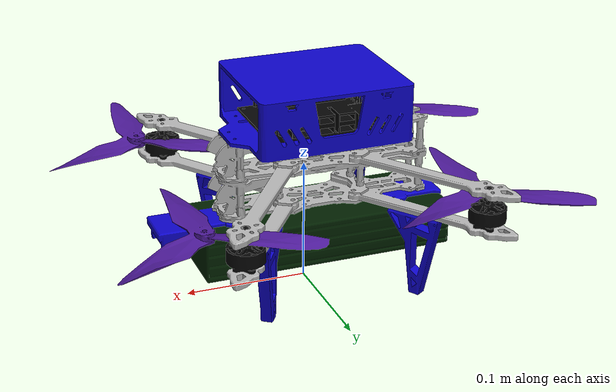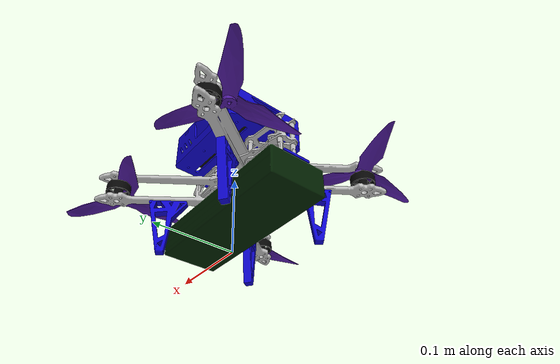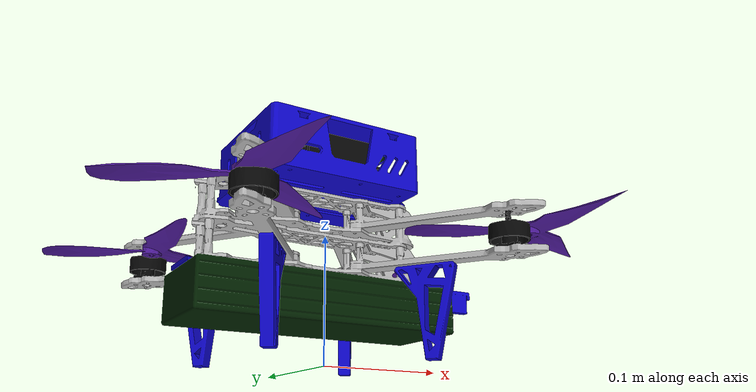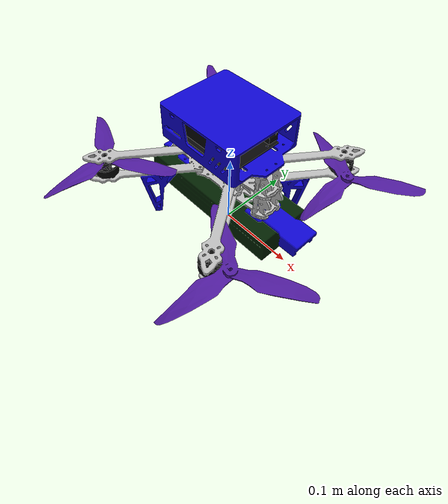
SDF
<?xml version="1.0" encoding="UTF-8"?>
<sdf version='1.9'>
  <model name='coisaruim_base'>
    <pose>0 0 0.09 0 0 0</pose>
    <self_collide>false</self_collide>
    <static>false</static>
    <link name="base_link">
      <inertial>
        <mass>2.35</mass>
        <inertia>
          <ixx>0.02166666666666667</ixx>
          <ixy>0</ixy>
          <ixz>0</ixz>
          <iyy>0.02166666666666667</iyy>
          <iyz>0</iyz>
          <izz>0.04000000000000001</izz>
        </inertia>
      </inertial>
      <gravity>true</gravity>
      <velocity_decay/>
      <visual name="base_link_visual">
        <pose>0 0 0.005 0 0 -1.5707</pose>
        <geometry>
          <mesh>
            <scale>1 1 1</scale>
            <uri>model://coisaruim_base/meshes/CoisaRuim.dae</uri>
          </mesh>
        </geometry>
      </visual>
      <collision name="base_link_collision">
        <pose>0 0 0.005 0 0 -1.5707</pose>
        <geometry>
          <mesh>
            <scale>1 1 1</scale>
            <uri>model://coisaruim_base/meshes/CoisaRuim_Collision.stl</uri>
          </mesh>
        </geometry>
        <surface>
          <contact>
            <ode>
              <min_depth>0.001</min_depth>
              <max_vel>0</max_vel>
            </ode>
          </contact>
          <friction>
            <ode/>
          </friction>
        </surface>
      </collision>
      <sensor name="air_pressure_sensor" type="air_pressure">
        <always_on>1</always_on>
        <update_rate>50</update_rate>
        <air_pressure>
          <pressure>
            <noise type="gaussian">
              <mean>0</mean>
              <stddev>0.01</stddev>
            </noise>
          </pressure>
        </air_pressure>
      </sensor>
      <sensor name="imu_sensor" type="imu">
        <always_on>1</always_on>
        <update_rate>250</update_rate>
        <imu>
          <angular_velocity>
            <x>
              <noise type="gaussian">
                <mean>0</mean>
                <stddev>0.00018665</stddev>
                <dynamic_bias_stddev>3.8785e-05</dynamic_bias_stddev>
                <dynamic_bias_correlation_time>1000</dynamic_bias_correlation_time>
              </noise>
            </x>
            <y>
              <noise type="gaussian">
                <mean>0</mean>
                <stddev>0.00018665</stddev>
                <dynamic_bias_stddev>3.8785e-05</dynamic_bias_stddev>
                <dynamic_bias_correlation_time>1000</dynamic_bias_correlation_time>
              </noise>
            </y>
            <z>
              <noise type="gaussian">
                <mean>0</mean>
                <stddev>0.00018665</stddev>
                <dynamic_bias_stddev>3.8785e-05</dynamic_bias_stddev>
                <dynamic_bias_correlation_time>1000</dynamic_bias_correlation_time>
              </noise>
            </z>
          </angular_velocity>
          <linear_acceleration>
            <x>
              <noise type="gaussian">
                <mean>0</mean>
                <stddev>0.00186</stddev>
                <dynamic_bias_stddev>0.006</dynamic_bias_stddev>
                <dynamic_bias_correlation_time>300</dynamic_bias_correlation_time>
              </noise>
            </x>
            <y>
              <noise type="gaussian">
                <mean>0</mean>
                <stddev>0.00186</stddev>
                <dynamic_bias_stddev>0.006</dynamic_bias_stddev>
                <dynamic_bias_correlation_time>300</dynamic_bias_correlation_time>
              </noise>
            </y>
            <z>
              <noise type="gaussian">
                <mean>0</mean>
                <stddev>0.00186</stddev>
                <dynamic_bias_stddev>0.006</dynamic_bias_stddev>
                <dynamic_bias_correlation_time>300</dynamic_bias_correlation_time>
              </noise>
            </z>
          </linear_acceleration>
        </imu>
      </sensor>
      <sensor name="navsat_sensor" type="navsat">
        <always_on>1</always_on>
        <update_rate>30</update_rate>
      </sensor>
    </link>
    <link name="rotor_0">
      <gravity>true</gravity>
      <self_collide>false</self_collide>
      <velocity_decay/>
      <pose>0.110821 -0.106648 0.004049 0 0 0</pose>
      <inertial>
          <mass>0.016076923076923075</mass>
          <inertia>
            <ixx>3.8464910483993325e-07</ixx>
            <iyy>2.6115851691700804e-05</iyy>
            <izz>2.649858234714004e-05</izz>
          </inertia>
        </inertial>
      <visual name="rotor_0_visual">
        <pose>0 0 0 0 0 0</pose>
        <geometry>
          <mesh>
            <scale>1 1 1</scale>
            <uri>model://coisaruim_base/meshes/7040_prop_CCW.stl</uri>
          </mesh>
        </geometry>
        <material>
          <script>
            <name>Gazebo/Indigo</name>
            <uri>file://media/materials/scripts/gazebo.material</uri>
          </script>
        </material>
      </visual>
      <collision name="rotor_0_collision">
        <pose>0 0 0 0 0 0</pose>
        <geometry>
          <mesh>
            <scale>1 1 1</scale>
            <uri>model://coisaruim_base/meshes/7inProp_Collision.stl</uri>
          </mesh>
        </geometry>
        <surface>
          <contact>
            <ode>
              <min_depth>0.001</min_depth>
              <max_vel>0</max_vel>
            </ode>
          </contact>
          <friction>
            <ode/>
          </friction>
        </surface>
      </collision>
    </link>
    <joint name="rotor_0_joint" type="revolute">
      <parent>base_link</parent>
      <child>rotor_0</child>
      <axis>
        <xyz>0 0 1</xyz>
        <limit>
          <lower>-1e+16</lower>
          <upper>1e+16</upper>
        </limit>
        <dynamics>
          <spring_reference>0</spring_reference>
          <spring_stiffness>0</spring_stiffness>
        </dynamics>
      </axis>
    </joint>
    <link name="rotor_1">
      <gravity>true</gravity>
      <self_collide>false</self_collide>
      <velocity_decay/>
      <pose>-0.110301 0.086783 0.004049 0 0 0</pose>
      <inertial>
          <mass>0.016076923076923075</mass>
          <inertia>
            <ixx>3.8464910483993325e-07</ixx>
            <iyy>2.6115851691700804e-05</iyy>
            <izz>2.649858234714004e-05</izz>
          </inertia>
        </inertial>
      <visual name="rotor_1_visual">
        <pose>0 0 0 0 0 0</pose>
        <geometry>
          <mesh>
            <scale>1 1 1</scale>
            <uri>model://coisaruim_base/meshes/7040_prop_CCW.stl</uri>
          </mesh>
        </geometry>
        <material>
          <script>
            <name>Gazebo/Indigo</name>
            <uri>file://media/materials/scripts/gazebo.material</uri>
          </script>
        </material>
      </visual>
      <collision name="rotor_1_collision">
        <pose>0 0 0 0 0 0</pose>
        <geometry>
          <mesh>
            <scale>1 1 1</scale>
            <uri>model://coisaruim_base/meshes/7inProp_Collision.stl</uri>
          </mesh>
        </geometry>
        <surface>
          <contact>
            <ode>
              <min_depth>0.001</min_depth>
              <max_vel>0</max_vel>
            </ode>
          </contact>
          <friction>
            <ode/>
          </friction>
        </surface>
      </collision>
    </link>
    <joint name="rotor_1_joint" type="revolute">
      <parent>base_link</parent>
      <child>rotor_1</child>
      <axis>
        <xyz>0 0 1</xyz>
        <limit>
          <lower>-1e+16</lower>
          <upper>1e+16</upper>
        </limit>
        <dynamics>
          <spring_reference>0</spring_reference>
          <spring_stiffness>0</spring_stiffness>
        </dynamics>
      </axis>
    </joint>
    <link name="rotor_2">
      <gravity>true</gravity>
      <self_collide>false</self_collide>
      <velocity_decay/>
      <pose>0.110702 0.087353 0.004049 0 0 0</pose>
      <inertial>
          <mass>0.016076923076923075</mass>
          <inertia>
            <ixx>3.8464910483993325e-07</ixx>
            <iyy>2.6115851691700804e-05</iyy>
            <izz>2.649858234714004e-05</izz>
          </inertia>
        </inertial>
      <visual name="rotor_2_visual">
        <pose>0 0 0 0 0 0</pose>
        <geometry>
          <mesh>
            <scale>1 1 1</scale>
            <uri>model://coisaruim_base/meshes/7040_prop_CW.stl</uri>
          </mesh>
        </geometry>
        <material>
          <script>
            <name>Gazebo/Indigo</name>
            <uri>file://media/materials/scripts/gazebo.material</uri>
          </script>
        </material>
      </visual>
      <collision name="rotor_2_collision">
        <pose>0 0 0 0 0 0 </pose>
        <geometry>
          <mesh>
            <scale>1 1 1</scale>
            <uri>model://coisaruim_base/meshes/7inProp_Collision.stl</uri>
          </mesh>
        </geometry>
        <surface>
          <contact>
            <ode>
              <min_depth>0.001</min_depth>
              <max_vel>0</max_vel>
            </ode>
          </contact>
          <friction>
            <ode/>
          </friction>
        </surface>
      </collision>
    </link>
    <joint name="rotor_2_joint" type="revolute">
      <parent>base_link</parent>
      <child>rotor_2</child>
      <axis>
        <xyz>0 0 1</xyz>
        <limit>
          <lower>-1e+16</lower>
          <upper>1e+16</upper>
        </limit>
        <dynamics>
          <spring_reference>0</spring_reference>
          <spring_stiffness>0</spring_stiffness>
        </dynamics>
      </axis>
    </joint>
    <link name="rotor_3">
      <gravity>true</gravity>
      <self_collide>false</self_collide>
      <velocity_decay/>
      <pose>-0.110743 -0.106413 0.004049 0 0 0</pose>
      <inertial>
          <mass>0.016076923076923075</mass>
          <inertia>
            <ixx>3.8464910483993325e-07</ixx>
            <iyy>2.6115851691700804e-05</iyy>
            <izz>2.649858234714004e-05</izz>
          </inertia>
        </inertial>
      <visual name="rotor_3_visual">
        <pose>0 0 0 0 0 0</pose>
        <geometry>
          <mesh>
            <scale>1 1 1</scale>
            <uri>model://coisaruim_base/meshes/7040_prop_CW.stl</uri>
          </mesh>
        </geometry>
        <material>
          <script>
            <name>Gazebo/Indigo</name>
            <uri>file://media/materials/scripts/gazebo.material</uri>
          </script>
        </material>
      </visual>
      <collision name="rotor_3_collision">
        <pose>0 0 0 0 0 0 </pose>
        <geometry>
          <mesh>
            <scale>1 1 1</scale>
            <uri>model://coisaruim_base/meshes/7inProp_Collision.stl</uri>
          </mesh>
        </geometry>
        <surface>
          <contact>
            <ode>
              <min_depth>0.001</min_depth>
              <max_vel>0</max_vel>
            </ode>
          </contact>
          <friction>
            <ode/>
          </friction>
        </surface>
      </collision>
    </link>
    <joint name="rotor_3_joint" type="revolute">
      <parent>base_link</parent>
      <child>rotor_3</child>
      <axis>
        <xyz>0 0 1</xyz>
        <limit>
          <lower>-1e+16</lower>
          <upper>1e+16</upper>
        </limit>
        <dynamics>
          <spring_reference>0</spring_reference>
          <spring_stiffness>0</spring_stiffness>
        </dynamics>
      </axis>
    </joint>
  </model>
</sdf>
